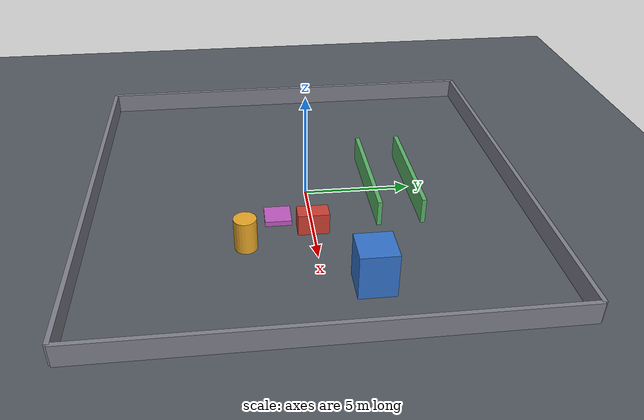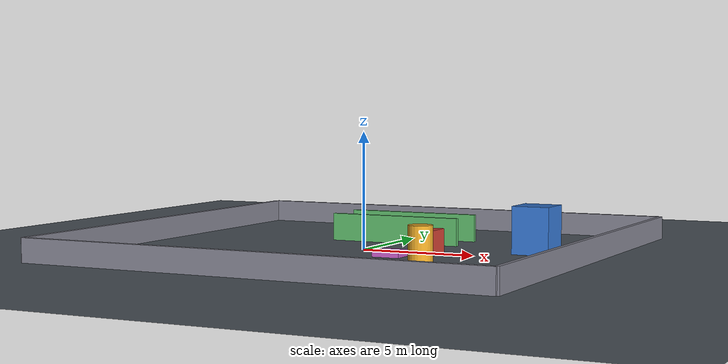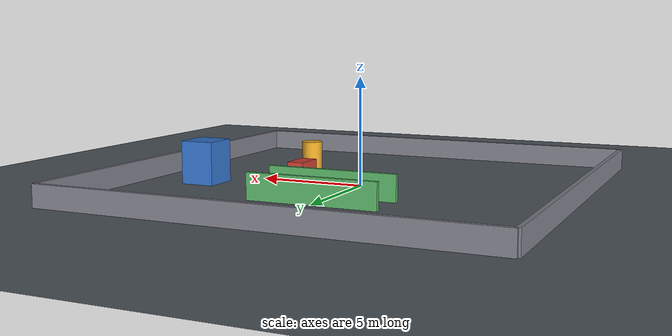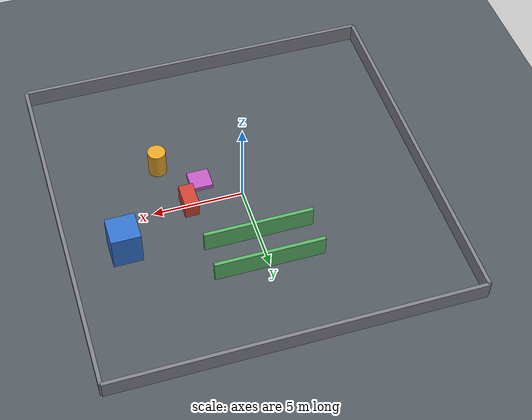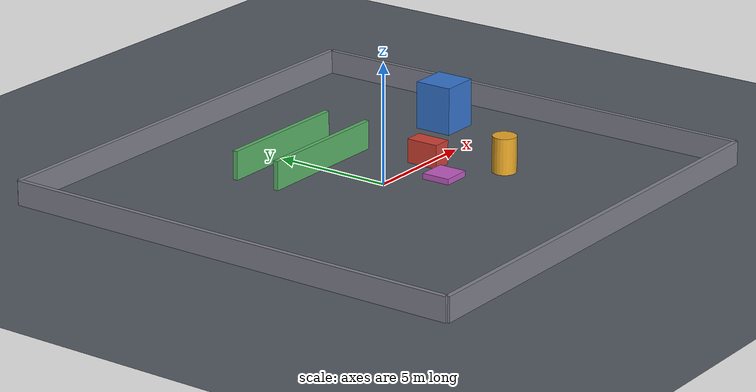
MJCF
<?xml version="1.0"?>
<mujoco model="mickrobot_test_world">
  <worldbody>
    <geom name="ground" type="plane" size="50 50 0.1" rgba="0.32 0.35 0.38 1" friction="1.0 0.02 0.002"/>
    <geom name="boundary_north" type="box" pos="0 10 0.5" size="10 0.1 0.5" rgba="0.5 0.5 0.55 1"/>
    <geom name="boundary_south" type="box" pos="0 -10 0.5" size="10 0.1 0.5" rgba="0.5 0.5 0.55 1"/>
    <geom name="boundary_east" type="box" pos="10 0 0.5" size="0.1 10 0.5" rgba="0.5 0.5 0.55 1"/>
    <geom name="boundary_west" type="box" pos="-10 0 0.5" size="0.1 10 0.5" rgba="0.5 0.5 0.55 1"/>
    <geom name="box_near" type="box" pos="3 0 0.5" size="0.4 0.7 0.5" rgba="0.8 0.25 0.2 1"/>
    <geom name="box_far" type="box" pos="7 2 1.0" size="0.8 0.8 1.0" rgba="0.2 0.45 0.8 1"/>
    <geom name="cylinder" type="cylinder" pos="4 -3 0.75" size="0.5 0.75" rgba="0.9 0.65 0.15 1"/>
    <geom name="corridor_left" type="box" pos="0 3 0.6" size="3 0.1 0.6" rgba="0.35 0.7 0.4 1"/>
    <geom name="corridor_right" type="box" pos="0 5 0.6" size="3 0.1 0.6" rgba="0.35 0.7 0.4 1"/>
    <geom name="low_obstacle" type="box" pos="2 -1.5 0.12" size="0.6 0.6 0.12" rgba="0.75 0.35 0.75 1"/>
  </worldbody>
</mujoco>
